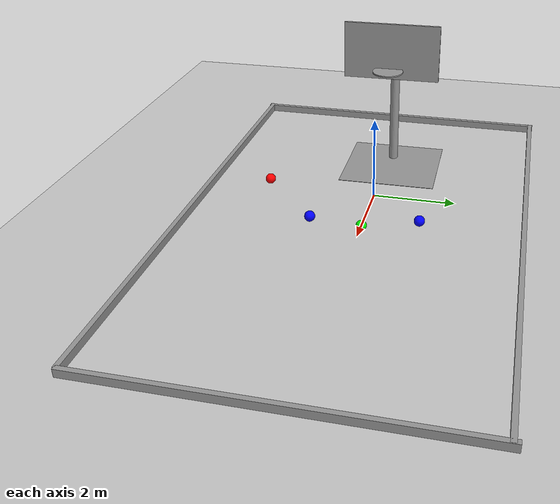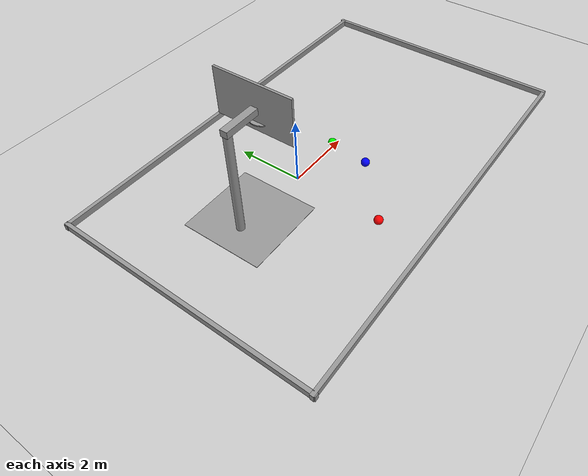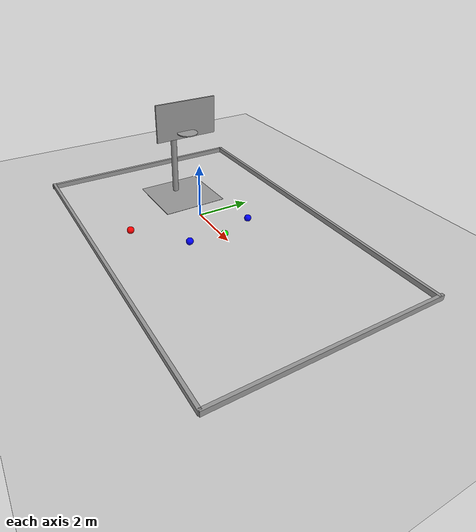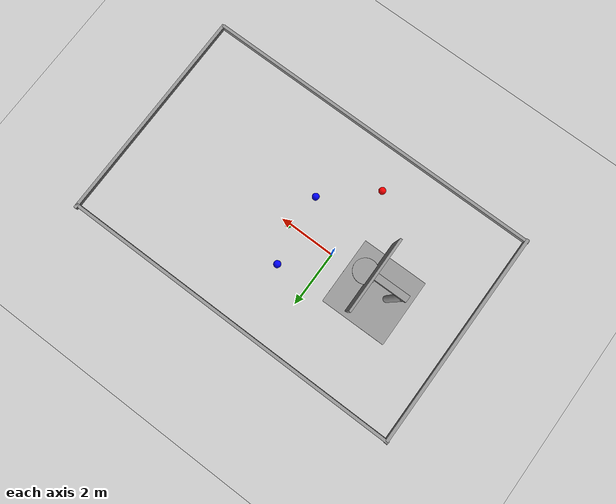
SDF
<sdf version="1.6">
 <world name="default">
  <scene><ambient>0.4 0.4 0.4 1</ambient><background>0.7 0.7 0.7 1</background><shadows>1</shadows></scene>
  <model name="ground_plane">
   <static>1</static>
   <link name="link">
    <collision name="collision">
     <geometry><plane><normal>0 0 1</normal><size>100 100</size></plane></geometry>
     <surface>
      <contact><collide_bitmask>65535</collide_bitmask></contact>
      <friction><ode><mu>100</mu><mu2>50</mu2></ode></friction>
     </surface>
    </collision>
    <visual name="visual">
     <cast_shadows>0</cast_shadows>
     <geometry><plane><normal>0 0 1</normal><size>100 100</size></plane></geometry>
     <material>
      <script><uri>file://media/materials/scripts/gazebo.material</uri><name>Gazebo/Grey</name></script>
     </material>
    </visual>
   </link>
  </model>
  <physics name="default_physics" default="0" type="ode">
   <real_time_update_rate>1000</real_time_update_rate>
   <max_step_size>0.001</max_step_size>
   <real_time_factor>1</real_time_factor>
   <ode>
    <solver>
     <type>quick</type>
     <iters>150</iters>
     <precon_iters>0</precon_iters>
     <sor>1.4</sor>
     <use_dynamic_moi_rescaling>1</use_dynamic_moi_rescaling>
    </solver>
    <constraints>
     <cfm>1e-05</cfm>
     <erp>0.2</erp>
     <contact_max_correcting_vel>2000</contact_max_correcting_vel>
     <contact_surface_layer>0.01</contact_surface_layer>
    </constraints>
   </ode>
  </physics>
  <gravity>0 0 -9.8</gravity>
  <magnetic_field>6e-06 2.3e-05 -4.2e-05</magnetic_field>
  <atmosphere type="adiabatic"/>
  <spherical_coordinates>
   <surface_model>EARTH_WGS84</surface_model>
   <latitude_deg>0</latitude_deg>
   <longitude_deg>0</longitude_deg>
   <elevation>0</elevation>
   <heading_deg>0</heading_deg>
  </spherical_coordinates>
  <model name="blue_ball">
   <link name="link">
    <inertial>
     <mass>0.213</mass>
     <inertia>
      <ixx>0.00322667</ixx>
      <ixy>0</ixy>
      <ixz>0</ixz>
      <iyy>0.00322667</iyy>
      <iyz>0</iyz>
      <izz>0.00322667</izz>
     </inertia>
    </inertial>
    <visual name="visual">
     <geometry><sphere><radius>0.127</radius></sphere></geometry>
     <material>
      <shader type="pixel"><normal_map>__default__</normal_map></shader>
      <script><name>ModelPreview_4::link::visual_MATERIAL_</name><uri>__default__</uri></script>
      <ambient>0 0 0 1</ambient>
      <diffuse>0 0 1 1</diffuse>
      <specular>0 0 0 1</specular>
      <emissive>0 0 0 1</emissive>
     </material>
    </visual>
    <collision name="collision">
     <geometry><sphere><radius>0.127</radius></sphere></geometry>
     <surface>
      <friction>
       <ode><mu>1</mu><mu2>1</mu2><fdir1>0 0 0</fdir1><slip1>0</slip1><slip2>0</slip2></ode>
       <torsional>
        <coefficient>1</coefficient>
        <patch_radius>0</patch_radius>
        <surface_radius>0</surface_radius>
        <use_patch_radius>1</use_patch_radius>
        <ode><slip>0</slip></ode>
       </torsional>
      </friction>
      <bounce><restitution_coefficient>0.15937</restitution_coefficient><threshold>0</threshold></bounce>
      <contact>
       <collide_without_contact>0</collide_without_contact>
       <collide_without_contact_bitmask>1</collide_without_contact_bitmask>
       <collide_bitmask>1</collide_bitmask>
       <ode>
        <soft_cfm>0</soft_cfm>
        <soft_erp>0.2</soft_erp>
        <kp>1e+13</kp>
        <kd>1</kd>
        <max_vel>100</max_vel>
        <min_depth>0.001</min_depth>
       </ode>
       <bullet>
        <split_impulse>1</split_impulse>
        <split_impulse_penetration_threshold>-0.01</split_impulse_penetration_threshold>
        <soft_cfm>0</soft_cfm>
        <soft_erp>0.2</soft_erp>
        <kp>1e+13</kp>
        <kd>1</kd>
       </bullet>
      </contact>
     </surface>
    </collision>
   </link>
   <static>0</static>
   <pose>1.2251 1.31024 0.126099 0 -0 0</pose>
  </model>
  <model name="green_ball">
   <link name="link">
    <inertial>
     <mass>0.213</mass>
     <inertia>
      <ixx>0.00322667</ixx>
      <ixy>0</ixy>
      <ixz>0</ixz>
      <iyy>0.00322667</iyy>
      <iyz>0</iyz>
      <izz>0.00322667</izz>
     </inertia>
    </inertial>
    <visual name="visual">
     <geometry><sphere><radius>0.127</radius></sphere></geometry>
     <material>
      <shader type="pixel"><normal_map>__default__</normal_map></shader>
      <script><name>ModelPreview_4::link::visual_MATERIAL_</name><uri>__default__</uri></script>
      <ambient>0 0 0 1</ambient>
      <diffuse>0 1 0 1</diffuse>
      <specular>0 0 0 1</specular>
      <emissive>0 0 0 1</emissive>
     </material>
    </visual>
    <collision name="collision">
     <geometry><sphere><radius>0.127</radius></sphere></geometry>
     <surface>
      <friction>
       <ode><mu>1</mu><mu2>1</mu2><fdir1>0 0 0</fdir1><slip1>0</slip1><slip2>0</slip2></ode>
       <torsional>
        <coefficient>1</coefficient>
        <patch_radius>0</patch_radius>
        <surface_radius>0</surface_radius>
        <use_patch_radius>1</use_patch_radius>
        <ode><slip>0</slip></ode>
       </torsional>
      </friction>
      <bounce><restitution_coefficient>0.15937</restitution_coefficient><threshold>0</threshold></bounce>
      <contact>
       <collide_without_contact>0</collide_without_contact>
       <collide_without_contact_bitmask>1</collide_without_contact_bitmask>
       <collide_bitmask>1</collide_bitmask>
       <ode>
        <soft_cfm>0</soft_cfm>
        <soft_erp>0.2</soft_erp>
        <kp>1e+13</kp>
        <kd>1</kd>
        <max_vel>100</max_vel>
        <min_depth>0.001</min_depth>
       </ode>
       <bullet>
        <split_impulse>1</split_impulse>
        <split_impulse_penetration_threshold>-0.01</split_impulse_penetration_threshold>
        <soft_cfm>0</soft_cfm>
        <soft_erp>0.2</soft_erp>
        <kp>1e+13</kp>
        <kd>1</kd>
       </bullet>
      </contact>
     </surface>
    </collision>
   </link>
   <static>0</static>
   <pose>1.71367 0.036085 0.126637 0 -0 0</pose>
  </model>
  <model name="panier">
   <link name="link_0">
    <inertial>
     <mass>0.166112</mass>
     <inertia>
      <ixx>0.135158</ixx>
      <ixy>0</ixy>
      <ixz>0</ixz>
      <iyy>0.135158</iyy>
      <iyz>0</iyz>
      <izz>0.0011059</izz>
     </inertia>
    </inertial>
    <pose>-0.656734 -0.006021 -1.17003 0 -0 0</pose>
    <visual name="visual">
     <geometry><cylinder><radius>0.115391</radius><length>3.11832</length></cylinder></geometry>
     <material>
      <lighting>1</lighting>
      <script><uri>file://media/materials/scripts/gazebo.material</uri><name>Gazebo/Grey</name></script>
      <shader type="pixel"/>
      <emissive>0 0 0 1</emissive>
     </material>
    </visual>
    <collision name="collision">
     <geometry><cylinder><radius>0.115391</radius><length>3.11832</length></cylinder></geometry>
     <surface>
      <friction>
       <ode><mu>1</mu><mu2>1</mu2><fdir1>0 0 0</fdir1><slip1>0</slip1><slip2>0</slip2></ode>
       <torsional>
        <coefficient>1</coefficient>
        <patch_radius>0</patch_radius>
        <surface_radius>0</surface_radius>
        <use_patch_radius>1</use_patch_radius>
        <ode><slip>0</slip></ode>
       </torsional>
      </friction>
      <bounce><restitution_coefficient>0</restitution_coefficient><threshold>1e+06</threshold></bounce>
      <contact>
       <collide_without_contact>0</collide_without_contact>
       <collide_without_contact_bitmask>1</collide_without_contact_bitmask>
       <collide_bitmask>1</collide_bitmask>
       <ode>
        <soft_cfm>0</soft_cfm>
        <soft_erp>0.2</soft_erp>
        <kp>1e+13</kp>
        <kd>1</kd>
        <max_vel>0.01</max_vel>
        <min_depth>0</min_depth>
       </ode>
       <bullet>
        <split_impulse>1</split_impulse>
        <split_impulse_penetration_threshold>-0.01</split_impulse_penetration_threshold>
        <soft_cfm>0</soft_cfm>
        <soft_erp>0.2</soft_erp>
        <kp>1e+13</kp>
        <kd>1</kd>
       </bullet>
      </contact>
     </surface>
    </collision>
   </link>
   <link name="link_0_0">
    <inertial>
     <mass>0.0585463</mass>
     <inertia>
      <ixx>0.0287625</ixx>
      <ixy>0</ixy>
      <ixz>0</ixz>
      <iyy>0.0278333</iyy>
      <iyz>0</iyz>
      <izz>0.0565948</izz>
     </inertia>
    </inertial>
    <pose>-0.210583 0.046127 -2.73424 0 -0 0</pose>
    <visual name="visual">
     <geometry><box><size>2.38847 2.42801 0.010094</size></box></geometry>
     <material>
      <lighting>1</lighting>
      <script><uri>file://media/materials/scripts/gazebo.material</uri><name>Gazebo/Grey</name></script>
      <shader type="pixel"/>
      <emissive>0 0 0 1</emissive>
     </material>
    </visual>
    <collision name="collision">
     <geometry><box><size>2.38847 2.42801 0.010094</size></box></geometry>
     <surface>
      <friction>
       <ode><mu>1</mu><mu2>1</mu2><fdir1>0 0 0</fdir1><slip1>0</slip1><slip2>0</slip2></ode>
       <torsional>
        <coefficient>1</coefficient>
        <patch_radius>0</patch_radius>
        <surface_radius>0</surface_radius>
        <use_patch_radius>1</use_patch_radius>
        <ode><slip>0</slip></ode>
       </torsional>
      </friction>
      <bounce><restitution_coefficient>0</restitution_coefficient><threshold>1e+06</threshold></bounce>
      <contact>
       <collide_without_contact>0</collide_without_contact>
       <collide_without_contact_bitmask>1</collide_without_contact_bitmask>
       <collide_bitmask>1</collide_bitmask>
       <ode>
        <soft_cfm>0</soft_cfm>
        <soft_erp>0.2</soft_erp>
        <kp>1e+13</kp>
        <kd>1</kd>
        <max_vel>0.01</max_vel>
        <min_depth>0</min_depth>
       </ode>
       <bullet>
        <split_impulse>1</split_impulse>
        <split_impulse_penetration_threshold>-0.01</split_impulse_penetration_threshold>
        <soft_cfm>0</soft_cfm>
        <soft_erp>0.2</soft_erp>
        <kp>1e+13</kp>
        <kd>1</kd>
       </bullet>
      </contact>
     </surface>
    </collision>
   </link>
   <link name="link_1">
    <inertial>
     <mass>0.0439829</mass>
     <inertia>
      <ixx>0.000304534</ixx>
      <ixy>0</ixy>
      <ixz>0</ixz>
      <iyy>0.00429164</iyy>
      <iyz>0</iyz>
      <izz>0.00432387</izz>
     </inertia>
    </inertial>
    <pose>-0.243623 -0.016811 0.486194 3.14159 -0 3.14159</pose>
    <visual name="visual">
     <geometry><box><size>1.06478 0.214339 0.192733</size></box></geometry>
     <material>
      <lighting>1</lighting>
      <script><uri>file://media/materials/scripts/gazebo.material</uri><name>Gazebo/Grey</name></script>
      <shader type="pixel"/>
      <emissive>0 0 0 1</emissive>
     </material>
    </visual>
    <collision name="collision">
     <geometry><box><size>1.06478 0.214339 0.192733</size></box></geometry>
     <surface>
      <friction>
       <ode><mu>1</mu><mu2>1</mu2><fdir1>0 0 0</fdir1><slip1>0</slip1><slip2>0</slip2></ode>
       <torsional>
        <coefficient>1</coefficient>
        <patch_radius>0</patch_radius>
        <surface_radius>0</surface_radius>
        <use_patch_radius>1</use_patch_radius>
        <ode><slip>0</slip></ode>
       </torsional>
      </friction>
      <bounce><restitution_coefficient>0</restitution_coefficient><threshold>1e+06</threshold></bounce>
      <contact>
       <collide_without_contact>0</collide_without_contact>
       <collide_without_contact_bitmask>1</collide_without_contact_bitmask>
       <collide_bitmask>1</collide_bitmask>
       <ode>
        <soft_cfm>0</soft_cfm>
        <soft_erp>0.2</soft_erp>
        <kp>1e+13</kp>
        <kd>1</kd>
        <max_vel>0.01</max_vel>
        <min_depth>0</min_depth>
       </ode>
       <bullet>
        <split_impulse>1</split_impulse>
        <split_impulse_penetration_threshold>-0.01</split_impulse_penetration_threshold>
        <soft_cfm>0</soft_cfm>
        <soft_erp>0.2</soft_erp>
        <kp>1e+13</kp>
        <kd>1</kd>
       </bullet>
      </contact>
     </surface>
    </collision>
   </link>
   <link name="link_2">
    <inertial>
     <mass>0.219257</mass>
     <inertia>
      <ixx>0.133426</ixx>
      <ixy>0</ixy>
      <ixz>0</ixz>
      <iyy>0.0345694</iyy>
      <iyz>0</iyz>
      <izz>0.0990279</izz>
     </inertia>
    </inertial>
    <pose>0.341809 0.038812 0.56135 0 -0 0</pose>
    <visual name="visual">
     <geometry><box><size>0.068431 2.32705 1.3738</size></box></geometry>
     <material>
      <lighting>1</lighting>
      <script><uri>file://media/materials/scripts/gazebo.material</uri><name>Gazebo/Grey</name></script>
      <shader type="pixel"/>
      <emissive>0 0 0 1</emissive>
     </material>
    </visual>
    <collision name="collision">
     <geometry><box><size>0.068431 2.32705 1.3738</size></box></geometry>
     <surface>
      <friction>
       <ode><mu>1</mu><mu2>1</mu2><fdir1>0 0 0</fdir1><slip1>0</slip1><slip2>0</slip2></ode>
       <torsional>
        <coefficient>1</coefficient>
        <patch_radius>0</patch_radius>
        <surface_radius>0</surface_radius>
        <use_patch_radius>1</use_patch_radius>
        <ode><slip>0</slip></ode>
       </torsional>
      </friction>
      <bounce><restitution_coefficient>0</restitution_coefficient><threshold>1e+06</threshold></bounce>
      <contact>
       <collide_without_contact>0</collide_without_contact>
       <collide_without_contact_bitmask>1</collide_without_contact_bitmask>
       <collide_bitmask>1</collide_bitmask>
       <ode>
        <soft_cfm>0</soft_cfm>
        <soft_erp>0.2</soft_erp>
        <kp>1e+13</kp>
        <kd>1</kd>
        <max_vel>0.01</max_vel>
        <min_depth>0</min_depth>
       </ode>
       <bullet>
        <split_impulse>1</split_impulse>
        <split_impulse_penetration_threshold>-0.01</split_impulse_penetration_threshold>
        <soft_cfm>0</soft_cfm>
        <soft_erp>0.2</soft_erp>
        <kp>1e+13</kp>
        <kd>1</kd>
       </bullet>
      </contact>
     </surface>
    </collision>
   </link>
   <link name="link_3">
    <inertial>
     <mass>0.0165936</mass>
     <inertia>
      <ixx>0.000575779</ixx>
      <ixy>0</ixy>
      <ixz>0</ixz>
      <iyy>0.000575779</iyy>
      <iyz>0</iyz>
      <izz>0.00114911</izz>
     </inertia>
    </inertial>
    <pose>0.558547 -0.015985 0.122483 0 -0 0.098172</pose>
    <visual name="visual">
     <geometry><cylinder><radius>0.372156</radius><length>0.0297691</length></cylinder></geometry>
     <material>
      <lighting>1</lighting>
      <script><uri>file://media/materials/scripts/gazebo.material</uri><name>Gazebo/Grey</name></script>
      <shader type="pixel"/>
      <emissive>0 0 0 1</emissive>
     </material>
    </visual>
    <collision name="collision">
     <geometry><cylinder><radius>0.372156</radius><length>0.029769</length></cylinder></geometry>
     <surface>
      <friction>
       <ode><mu>1</mu><mu2>1</mu2><fdir1>0 0 0</fdir1><slip1>0</slip1><slip2>0</slip2></ode>
       <torsional>
        <coefficient>1</coefficient>
        <patch_radius>0</patch_radius>
        <surface_radius>0</surface_radius>
        <use_patch_radius>1</use_patch_radius>
        <ode><slip>0</slip></ode>
       </torsional>
      </friction>
      <bounce><restitution_coefficient>0</restitution_coefficient><threshold>1e+06</threshold></bounce>
      <contact>
       <collide_without_contact>0</collide_without_contact>
       <collide_without_contact_bitmask>1</collide_without_contact_bitmask>
       <collide_bitmask>1</collide_bitmask>
       <ode>
        <soft_cfm>0</soft_cfm>
        <soft_erp>0.2</soft_erp>
        <kp>1e+13</kp>
        <kd>1</kd>
        <max_vel>0.01</max_vel>
        <min_depth>0</min_depth>
       </ode>
       <bullet>
        <split_impulse>1</split_impulse>
        <split_impulse_penetration_threshold>-0.01</split_impulse_penetration_threshold>
        <soft_cfm>0</soft_cfm>
        <soft_erp>0.2</soft_erp>
        <kp>1e+13</kp>
        <kd>1</kd>
       </bullet>
      </contact>
     </surface>
    </collision>
   </link>
   <joint name="link_0_0_JOINT_3" type="fixed">
    <parent>link_0_0</parent>
    <child>link_0</child>
    <physics>
     <ode><limit><cfm>0</cfm><erp>0.2</erp></limit><suspension><cfm>0</cfm><erp>0.2</erp></suspension></ode>
    </physics>
   </joint>
   <joint name="link_1_JOINT_0" type="fixed">
    <parent>link_1</parent>
    <child>link_0</child>
    <physics>
     <ode><limit><cfm>0</cfm><erp>0.2</erp></limit><suspension><cfm>0</cfm><erp>0.2</erp></suspension></ode>
    </physics>
   </joint>
   <joint name="link_2_JOINT_1" type="fixed">
    <parent>link_2</parent>
    <child>link_1</child>
    <physics>
     <ode><limit><cfm>0</cfm><erp>0.2</erp></limit><suspension><cfm>0</cfm><erp>0.2</erp></suspension></ode>
    </physics>
   </joint>
   <joint name="link_3_JOINT_2" type="fixed">
    <parent>link_3</parent>
    <child>link_2</child>
    <physics>
     <ode><limit><cfm>0</cfm><erp>0.2</erp></limit><suspension><cfm>0</cfm><erp>0.2</erp></suspension></ode>
    </physics>
   </joint>
   <static>0</static>
   <pose>-1.62265 0.11233 2.73928 -3e-06 -1e-06 0.00996</pose>
  </model>
  <model name="terrain">
   <link name="link_1">
    <inertial>
     <mass>0.255675</mass>
     <inertia>
      <ixx>0.000983845</ixx>
      <ixy>0</ixy>
      <ixz>0</ixz>
      <iyy>3.37842</iyy>
      <iyz>0</iyz>
      <izz>3.37796</izz>
     </inertia>
    </inertial>
    <pose>-0.031248 -3.92202 0 0 -0 0</pose>
    <visual name="visual">
     <geometry><box><size>12.5909 0.110146 0.184511</size></box></geometry>
     <material>
      <lighting>1</lighting>
      <script><uri>file://media/materials/scripts/gazebo.material</uri><name>Gazebo/Grey</name></script>
      <shader type="pixel"/>
     </material>
    </visual>
    <collision name="collision">
     <geometry><box><size>12.5909 0.110146 0.184511</size></box></geometry>
     <surface>
      <friction>
       <ode><mu>1</mu><mu2>1</mu2><fdir1>0 0 0</fdir1><slip1>0</slip1><slip2>0</slip2></ode>
       <torsional>
        <coefficient>1</coefficient>
        <patch_radius>0</patch_radius>
        <surface_radius>0</surface_radius>
        <use_patch_radius>1</use_patch_radius>
        <ode><slip>0</slip></ode>
       </torsional>
      </friction>
      <bounce><restitution_coefficient>0</restitution_coefficient><threshold>1e+06</threshold></bounce>
      <contact>
       <collide_without_contact>0</collide_without_contact>
       <collide_without_contact_bitmask>1</collide_without_contact_bitmask>
       <collide_bitmask>1</collide_bitmask>
       <ode>
        <soft_cfm>0</soft_cfm>
        <soft_erp>0.2</soft_erp>
        <kp>1e+13</kp>
        <kd>1</kd>
        <max_vel>0.01</max_vel>
        <min_depth>0</min_depth>
       </ode>
       <bullet>
        <split_impulse>1</split_impulse>
        <split_impulse_penetration_threshold>-0.01</split_impulse_penetration_threshold>
        <soft_cfm>0</soft_cfm>
        <soft_erp>0.2</soft_erp>
        <kp>1e+13</kp>
        <kd>1</kd>
       </bullet>
      </contact>
     </surface>
    </collision>
   </link>
   <link name="link_1_clone">
    <inertial>
     <mass>0.255964</mass>
     <inertia>
      <ixx>0.000984961</ixx>
      <ixy>0</ixy>
      <ixz>0</ixz>
      <iyy>3.38946</iyy>
      <iyz>0</iyz>
      <izz>3.38899</izz>
     </inertia>
    </inertial>
    <pose>0.007138 3.90269 0 0 -0 0</pose>
    <visual name="visual">
     <geometry><box><size>12.6043 0.110146 0.184511</size></box></geometry>
     <material>
      <lighting>1</lighting>
      <script><uri>file://media/materials/scripts/gazebo.material</uri><name>Gazebo/Grey</name></script>
      <shader type="pixel"/>
     </material>
    </visual>
    <collision name="collision">
     <geometry><box><size>12.6043 0.110146 0.184511</size></box></geometry>
     <surface>
      <friction>
       <ode><mu>1</mu><mu2>1</mu2><fdir1>0 0 0</fdir1><slip1>0</slip1><slip2>0</slip2></ode>
       <torsional>
        <coefficient>1</coefficient>
        <patch_radius>0</patch_radius>
        <surface_radius>0</surface_radius>
        <use_patch_radius>1</use_patch_radius>
        <ode><slip>0</slip></ode>
       </torsional>
      </friction>
      <bounce><restitution_coefficient>0</restitution_coefficient><threshold>1e+06</threshold></bounce>
      <contact>
       <collide_without_contact>0</collide_without_contact>
       <collide_without_contact_bitmask>1</collide_without_contact_bitmask>
       <collide_bitmask>1</collide_bitmask>
       <ode>
        <soft_cfm>0</soft_cfm>
        <soft_erp>0.2</soft_erp>
        <kp>1e+13</kp>
        <kd>1</kd>
        <max_vel>0.01</max_vel>
        <min_depth>0</min_depth>
       </ode>
       <bullet>
        <split_impulse>1</split_impulse>
        <split_impulse_penetration_threshold>-0.01</split_impulse_penetration_threshold>
        <soft_cfm>0</soft_cfm>
        <soft_erp>0.2</soft_erp>
        <kp>1e+13</kp>
        <kd>1</kd>
       </bullet>
      </contact>
     </surface>
    </collision>
   </link>
   <link name="link_1_clone_0">
    <inertial>
     <mass>0.162005</mass>
     <inertia>
      <ixx>0.0006234</ixx>
      <ixy>0</ixy>
      <ixz>0</ixz>
      <iyy>0.859748</iyy>
      <iyz>0</iyz>
      <izz>0.859452</izz>
     </inertia>
    </inertial>
    <pose>6.26401 0.034922 0 0 -0 1.56826</pose>
    <visual name="visual">
     <geometry><box><size>7.97804 0.110146 0.184511</size></box></geometry>
     <material>
      <lighting>1</lighting>
      <script><uri>file://media/materials/scripts/gazebo.material</uri><name>Gazebo/Grey</name></script>
      <shader type="pixel"/>
     </material>
    </visual>
    <collision name="collision">
     <geometry><box><size>7.97804 0.110146 0.184511</size></box></geometry>
     <surface>
      <friction>
       <ode><mu>1</mu><mu2>1</mu2><fdir1>0 0 0</fdir1><slip1>0</slip1><slip2>0</slip2></ode>
       <torsional>
        <coefficient>1</coefficient>
        <patch_radius>0</patch_radius>
        <surface_radius>0</surface_radius>
        <use_patch_radius>1</use_patch_radius>
        <ode><slip>0</slip></ode>
       </torsional>
      </friction>
      <bounce><restitution_coefficient>0</restitution_coefficient><threshold>1e+06</threshold></bounce>
      <contact>
       <collide_without_contact>0</collide_without_contact>
       <collide_without_contact_bitmask>1</collide_without_contact_bitmask>
       <collide_bitmask>1</collide_bitmask>
       <ode>
        <soft_cfm>0</soft_cfm>
        <soft_erp>0.2</soft_erp>
        <kp>1e+13</kp>
        <kd>1</kd>
        <max_vel>0.01</max_vel>
        <min_depth>0</min_depth>
       </ode>
       <bullet>
        <split_impulse>1</split_impulse>
        <split_impulse_penetration_threshold>-0.01</split_impulse_penetration_threshold>
        <soft_cfm>0</soft_cfm>
        <soft_erp>0.2</soft_erp>
        <kp>1e+13</kp>
        <kd>1</kd>
       </bullet>
      </contact>
     </surface>
    </collision>
   </link>
   <link name="link_1_clone_0_clone">
    <inertial>
     <mass>0.162005</mass>
     <inertia>
      <ixx>0.0006234</ixx>
      <ixy>0</ixy>
      <ixz>0</ixz>
      <iyy>0.859748</iyy>
      <iyz>0</iyz>
      <izz>0.859452</izz>
     </inertia>
    </inertial>
    <pose>-6.2399 -0.015597 0 0 -0 1.56699</pose>
    <visual name="visual">
     <geometry><box><size>7.97804 0.110146 0.184511</size></box></geometry>
     <material>
      <lighting>1</lighting>
      <script><uri>file://media/materials/scripts/gazebo.material</uri><name>Gazebo/Grey</name></script>
      <shader type="pixel"/>
     </material>
    </visual>
    <collision name="collision">
     <geometry><box><size>7.97804 0.110146 0.184511</size></box></geometry>
     <surface>
      <friction>
       <ode><mu>1</mu><mu2>1</mu2><fdir1>0 0 0</fdir1><slip1>0</slip1><slip2>0</slip2></ode>
       <torsional>
        <coefficient>1</coefficient>
        <patch_radius>0</patch_radius>
        <surface_radius>0</surface_radius>
        <use_patch_radius>1</use_patch_radius>
        <ode><slip>0</slip></ode>
       </torsional>
      </friction>
      <bounce><restitution_coefficient>0</restitution_coefficient><threshold>1e+06</threshold></bounce>
      <contact>
       <collide_without_contact>0</collide_without_contact>
       <collide_without_contact_bitmask>1</collide_without_contact_bitmask>
       <collide_bitmask>1</collide_bitmask>
       <ode>
        <soft_cfm>0</soft_cfm>
        <soft_erp>0.2</soft_erp>
        <kp>1e+13</kp>
        <kd>1</kd>
        <max_vel>0.01</max_vel>
        <min_depth>0</min_depth>
       </ode>
       <bullet>
        <split_impulse>1</split_impulse>
        <split_impulse_penetration_threshold>-0.01</split_impulse_penetration_threshold>
        <soft_cfm>0</soft_cfm>
        <soft_erp>0.2</soft_erp>
        <kp>1e+13</kp>
        <kd>1</kd>
       </bullet>
      </contact>
     </surface>
    </collision>
   </link>
   <static>0</static>
   <pose>1.39862 -0.21367 0.092255 0 -0 0</pose>
  </model>
  <model name="blue_ball_0">
   <link name="link">
    <inertial>
     <mass>0.213</mass>
     <inertia>
      <ixx>0.00322667</ixx>
      <ixy>0</ixy>
      <ixz>0</ixz>
      <iyy>0.00322667</iyy>
      <iyz>0</iyz>
      <izz>0.00322667</izz>
     </inertia>
    </inertial>
    <visual name="visual">
     <geometry><sphere><radius>0.127</radius></sphere></geometry>
     <material>
      <shader type="pixel"><normal_map>__default__</normal_map></shader>
      <script><name>ModelPreview_4::link::visual_MATERIAL_</name><uri>__default__</uri></script>
      <ambient>0 0 0 1</ambient>
      <diffuse>0 0 1 1</diffuse>
      <specular>0 0 0 1</specular>
      <emissive>0 0 0 1</emissive>
     </material>
    </visual>
    <collision name="collision">
     <geometry><sphere><radius>0.127</radius></sphere></geometry>
     <surface>
      <friction>
       <ode><mu>1</mu><mu2>1</mu2><fdir1>0 0 0</fdir1><slip1>0</slip1><slip2>0</slip2></ode>
       <torsional>
        <coefficient>1</coefficient>
        <patch_radius>0</patch_radius>
        <surface_radius>0</surface_radius>
        <use_patch_radius>1</use_patch_radius>
        <ode><slip>0</slip></ode>
       </torsional>
      </friction>
      <bounce><restitution_coefficient>0.15937</restitution_coefficient><threshold>0</threshold></bounce>
      <contact>
       <collide_without_contact>0</collide_without_contact>
       <collide_without_contact_bitmask>1</collide_without_contact_bitmask>
       <collide_bitmask>1</collide_bitmask>
       <ode>
        <soft_cfm>0</soft_cfm>
        <soft_erp>0.2</soft_erp>
        <kp>1e+13</kp>
        <kd>1</kd>
        <max_vel>100</max_vel>
        <min_depth>0.001</min_depth>
       </ode>
       <bullet>
        <split_impulse>1</split_impulse>
        <split_impulse_penetration_threshold>-0.01</split_impulse_penetration_threshold>
        <soft_cfm>0</soft_cfm>
        <soft_erp>0.2</soft_erp>
        <kp>1e+13</kp>
        <kd>1</kd>
       </bullet>
      </contact>
     </surface>
    </collision>
   </link>
   <static>0</static>
   <pose>1.54665 -1.22746 0.126136 0 -0 0</pose>
  </model>
  <light name="user_point_light_0" type="point">
   <pose>0.897753 -0.159916 1 0 -0 0</pose>
   <diffuse>0.5 0.5 0.5 1</diffuse>
   <specular>0.1 0.1 0.1 1</specular>
   <attenuation>
    <range>20</range>
    <constant>0.5</constant>
    <linear>0.01</linear>
    <quadratic>0.001</quadratic>
   </attenuation>
   <cast_shadows>0</cast_shadows>
   <direction>0 0 -1</direction>
  </light>
  <light name="user_point_light_1" type="point">
   <pose>-6.89889 -1.17489 1 0 -0 0</pose>
   <diffuse>0.5 0.5 0.5 1</diffuse>
   <specular>0.1 0.1 0.1 1</specular>
   <attenuation>
    <range>20</range>
    <constant>0.5</constant>
    <linear>0.01</linear>
    <quadratic>0.001</quadratic>
   </attenuation>
   <cast_shadows>0</cast_shadows>
   <direction>0 0 -1</direction>
  </light>
  <model name="red_ball">
   <link name="link">
    <inertial>
     <mass>0.213</mass>
     <inertia>
      <ixx>0.00322667</ixx>
      <ixy>0</ixy>
      <ixz>0</ixz>
      <iyy>0.00322667</iyy>
      <iyz>0</iyz>
      <izz>0.00322667</izz>
     </inertia>
    </inertial>
    <visual name="visual">
     <geometry><sphere><radius>0.127</radius></sphere></geometry>
     <material>
      <shader type="pixel"><normal_map>__default__</normal_map></shader>
      <script><name>ModelPreview_4::link::visual_MATERIAL_</name><uri>__default__</uri></script>
      <ambient>1 0 0 1</ambient>
      <diffuse>1 0 0 1</diffuse>
      <specular>1 0 0 1</specular>
      <emissive>1 0 0 0</emissive>
     </material>
    </visual>
    <collision name="collision">
     <geometry><sphere><radius>0.127</radius></sphere></geometry>
     <surface>
      <friction>
       <ode><mu>1</mu><mu2>1</mu2><fdir1>0 0 0</fdir1><slip1>0</slip1><slip2>0</slip2></ode>
       <torsional>
        <coefficient>1</coefficient>
        <patch_radius>0</patch_radius>
        <surface_radius>0</surface_radius>
        <use_patch_radius>1</use_patch_radius>
        <ode><slip>0</slip></ode>
       </torsional>
      </friction>
      <bounce><restitution_coefficient>0.15937</restitution_coefficient><threshold>0</threshold></bounce>
      <contact>
       <collide_without_contact>0</collide_without_contact>
       <collide_without_contact_bitmask>1</collide_without_contact_bitmask>
       <collide_bitmask>1</collide_bitmask>
       <ode>
        <soft_cfm>0</soft_cfm>
        <soft_erp>0.2</soft_erp>
        <kp>1e+13</kp>
        <kd>1</kd>
        <max_vel>100</max_vel>
        <min_depth>0.001</min_depth>
       </ode>
       <bullet>
        <split_impulse>1</split_impulse>
        <split_impulse_penetration_threshold>-0.01</split_impulse_penetration_threshold>
        <soft_cfm>0</soft_cfm>
        <soft_erp>0.2</soft_erp>
        <kp>1e+13</kp>
        <kd>1</kd>
       </bullet>
      </contact>
     </surface>
    </collision>
   </link>
   <static>0</static>
   <pose>-0.105196 -2.70291 0.126349 0 -0 0</pose>
  </model>
 </world>
</sdf>
